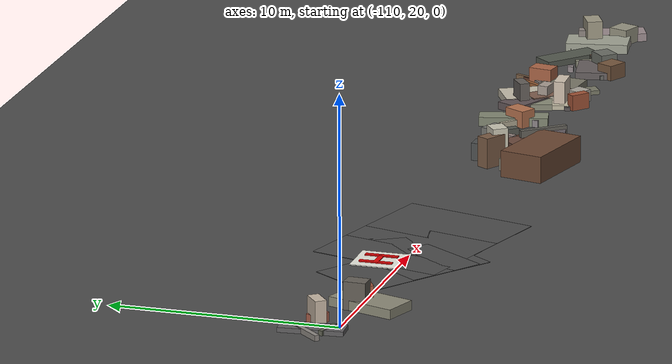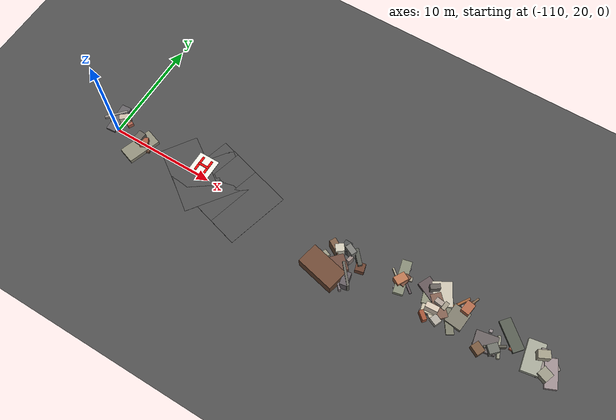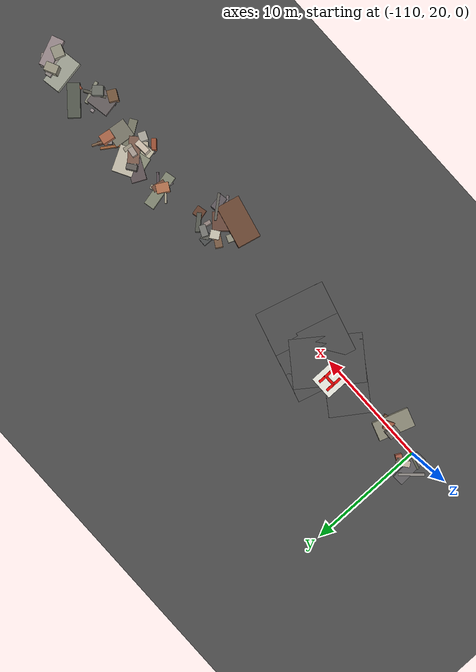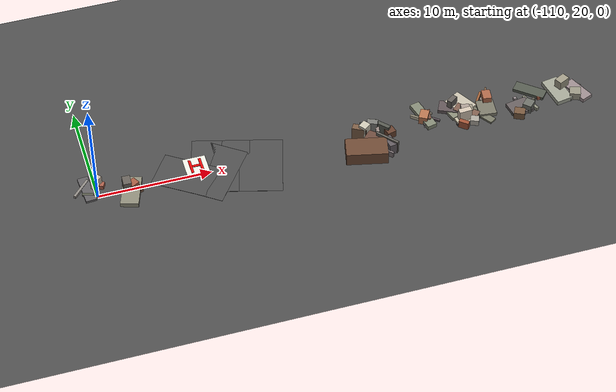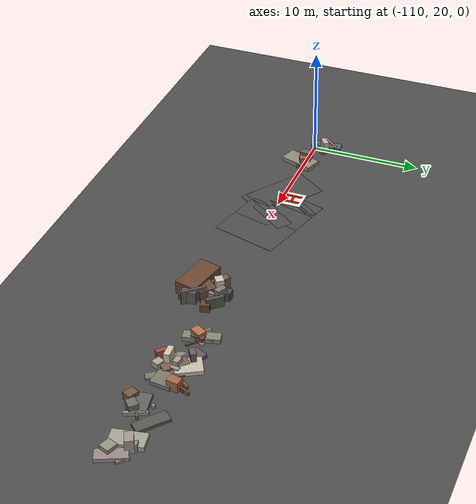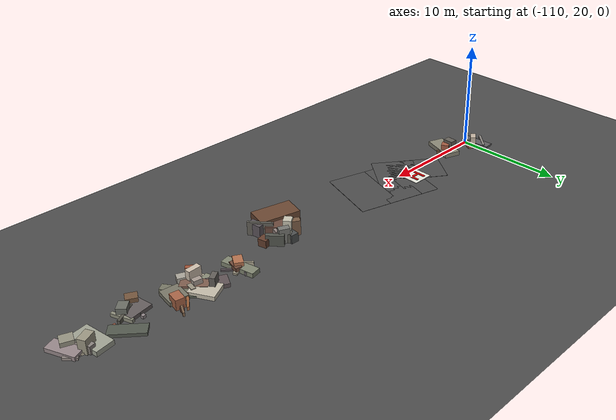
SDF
<sdf version="1.6">
 <world name="navitas_arena">
  <model name="ground_plane">
   <static>true</static>
   <link name="link">
    <collision name="collision">
     <geometry><plane><normal>0 0 1</normal><size>400 400</size></plane></geometry>
     <surface><friction><ode><mu>0.800</mu><mu2>0.800</mu2></ode></friction></surface>
    </collision>
    <visual name="visual">
     <cast_shadows>false</cast_shadows>
     <geometry><plane><normal>0 0 1</normal><size>400 400</size></plane></geometry>
     <material>
      <specular>0.04 0.04 0.04 1</specular>
      <script>
       <uri>file://media/materials/scripts/navitas_asphalt.material</uri>
       <name>Navitas/RealArenaAsphalt</name>
      </script>
     </material>
    </visual>
   </link>
  </model>
  <model name="road_kolay_1_18">
   <static>true</static>
   <pose>-101.885 19.935 0.040 0 0 0.969</pose>
   <link name="link">
    <collision name="col"><geometry><box><size>3.484 6.000 0.020</size></box></geometry></collision>
    <visual name="vis">
     <geometry><box><size>3.484 6.000 0.020</size></box></geometry>
     <material>
      <specular>0.04 0.04 0.04 1</specular>
      <script>
       <uri>file://media/materials/scripts/navitas_asphalt.material</uri>
       <name>Navitas/RealArenaAsphalt</name>
      </script>
     </material>
    </visual>
   </link>
  </model>
  <model name="road_kolay_2_18">
   <static>true</static>
   <pose>-99.883 20.070 0.040 0 0 2.510</pose>
   <link name="link">
    <collision name="col"><geometry><box><size>4.048 6.000 0.020</size></box></geometry></collision>
    <visual name="vis">
     <geometry><box><size>4.048 6.000 0.020</size></box></geometry>
     <material>
      <specular>0.04 0.04 0.04 1</specular>
      <script>
       <uri>file://media/materials/scripts/navitas_asphalt.material</uri>
       <name>Navitas/RealArenaAsphalt</name>
      </script>
     </material>
    </visual>
   </link>
  </model>
  <model name="road_kolay_3_25">
   <static>true</static>
   <pose>-95.791 19.520 0.040 0 0 2.870</pose>
   <link name="link">
    <collision name="col"><geometry><box><size>3.735 6.000 0.020</size></box></geometry></collision>
    <visual name="vis">
     <geometry><box><size>3.735 6.000 0.020</size></box></geometry>
     <material>
      <specular>0.04 0.04 0.04 1</specular>
      <script>
       <uri>file://media/materials/scripts/navitas_asphalt.material</uri>
       <name>Navitas/RealArenaAsphalt</name>
      </script>
     </material>
    </visual>
   </link>
  </model>
  <model name="road_kolay_3_26">
   <static>true</static>
   <pose>-98.326 20.220 0.040 0 0 2.874</pose>
   <link name="link">
    <collision name="col"><geometry><box><size>3.324 6.000 0.020</size></box></geometry></collision>
    <visual name="vis">
     <geometry><box><size>3.324 6.000 0.020</size></box></geometry>
     <material>
      <specular>0.04 0.04 0.04 1</specular>
      <script>
       <uri>file://media/materials/scripts/navitas_asphalt.material</uri>
       <name>Navitas/RealArenaAsphalt</name>
      </script>
     </material>
    </visual>
   </link>
  </model>
  <model name="road_kolay_3_27">
   <static>true</static>
   <pose>-100.325 20.770 0.040 0 0 2.871</pose>
   <link name="link">
    <collision name="col"><geometry><box><size>2.621 6.000 0.020</size></box></geometry></collision>
    <visual name="vis">
     <geometry><box><size>2.621 6.000 0.020</size></box></geometry>
     <material>
      <specular>0.04 0.04 0.04 1</specular>
      <script>
       <uri>file://media/materials/scripts/navitas_asphalt.material</uri>
       <name>Navitas/RealArenaAsphalt</name>
      </script>
     </material>
    </visual>
   </link>
  </model>
  <model name="blk_kolay_3_1_3">
   <static>true</static>
   <pose>-85.733 19.410 0.000 0 0 0</pose>
   <link name="link">
    <collision name="col_0">
     <pose>-1.041 -1.429 0.597 0.000 0.000 2.914</pose>
     <geometry><box><size>3.621 1.969 1.194</size></box></geometry>
    </collision>
    <visual name="vis_0">
     <pose>-1.041 -1.429 0.597 0.000 0.000 2.914</pose>
     <geometry><box><size>3.621 1.969 1.194</size></box></geometry>
     <material>
      <ambient>0.39 0.26 0.19 1</ambient>
      <diffuse>0.42 0.28 0.20 1</diffuse>
      <specular>0.05 0.05 0.045 1</specular>
     </material>
    </visual>
    <collision name="col_1">
     <pose>-0.304 1.374 0.391 0.000 0.000 1.536</pose>
     <geometry><box><size>0.913 0.696 0.783</size></box></geometry>
    </collision>
    <visual name="vis_1">
     <pose>-0.304 1.374 0.391 0.000 0.000 1.536</pose>
     <geometry><box><size>0.913 0.696 0.783</size></box></geometry>
     <material>
      <ambient>0.28 0.29 0.28 1</ambient>
      <diffuse>0.30 0.31 0.31 1</diffuse>
      <specular>0.05 0.05 0.045 1</specular>
     </material>
    </visual>
    <collision name="col_2">
     <pose>-0.984 0.748 0.685 0.000 0.000 2.615</pose>
     <geometry><box><size>1.278 0.606 1.370</size></box></geometry>
    </collision>
    <visual name="vis_2">
     <pose>-0.984 0.748 0.685 0.000 0.000 2.615</pose>
     <geometry><box><size>1.278 0.606 1.370</size></box></geometry>
     <material>
      <ambient>0.45 0.33 0.25 1</ambient>
      <diffuse>0.48 0.36 0.27 1</diffuse>
      <specular>0.05 0.05 0.045 1</specular>
     </material>
    </visual>
    <collision name="col_3">
     <pose>-1.553 -0.138 0.277 0.000 0.000 2.764</pose>
     <geometry><box><size>0.619 0.610 0.554</size></box></geometry>
    </collision>
    <visual name="vis_3">
     <pose>-1.553 -0.138 0.277 0.000 0.000 2.764</pose>
     <geometry><box><size>0.619 0.610 0.554</size></box></geometry>
     <material>
      <ambient>0.54 0.52 0.46 1</ambient>
      <diffuse>0.58 0.57 0.50 1</diffuse>
      <specular>0.05 0.05 0.045 1</specular>
     </material>
    </visual>
    <collision name="col_4">
     <pose>1.137 -1.294 0.550 0.000 0.000 3.307</pose>
     <geometry><box><size>0.654 1.247 1.100</size></box></geometry>
    </collision>
    <visual name="vis_4">
     <pose>1.137 -1.294 0.550 0.000 0.000 3.307</pose>
     <geometry><box><size>0.654 1.247 1.100</size></box></geometry>
     <material>
      <ambient>0.35 0.33 0.34 1</ambient>
      <diffuse>0.38 0.35 0.37 1</diffuse>
      <specular>0.05 0.05 0.045 1</specular>
     </material>
    </visual>
    <collision name="col_5">
     <pose>0.979 -0.968 0.631 0.000 0.000 2.273</pose>
     <geometry><box><size>2.194 0.216 1.261</size></box></geometry>
    </collision>
    <visual name="vis_5">
     <pose>0.979 -0.968 0.631 0.000 0.000 2.273</pose>
     <geometry><box><size>2.194 0.216 1.261</size></box></geometry>
     <material>
      <ambient>0.36 0.35 0.32 1</ambient>
      <diffuse>0.39 0.38 0.35 1</diffuse>
      <specular>0.05 0.05 0.045 1</specular>
     </material>
    </visual>
   </link>
  </model>
  <model name="blk_kolay_3_1_7">
   <static>true</static>
   <pose>-85.310 19.194 0.000 0 0 0</pose>
   <link name="link">
    <collision name="col_0">
     <pose>-1.000 0.884 0.814 0.000 0.000 2.206</pose>
     <geometry><box><size>0.703 0.771 1.628</size></box></geometry>
    </collision>
    <visual name="vis_0">
     <pose>-1.000 0.884 0.814 0.000 0.000 2.206</pose>
     <geometry><box><size>0.703 0.771 1.628</size></box></geometry>
     <material>
      <ambient>0.73 0.71 0.65 1</ambient>
      <diffuse>0.79 0.77 0.70 1</diffuse>
      <specular>0.05 0.05 0.045 1</specular>
     </material>
    </visual>
    <collision name="col_1">
     <pose>0.664 1.174 0.495 0.000 0.000 2.307</pose>
     <geometry><box><size>1.533 0.372 0.990</size></box></geometry>
    </collision>
    <visual name="vis_1">
     <pose>0.664 1.174 0.495 0.000 0.000 2.307</pose>
     <geometry><box><size>1.533 0.372 0.990</size></box></geometry>
     <material>
      <ambient>0.30 0.32 0.29 1</ambient>
      <diffuse>0.33 0.34 0.31 1</diffuse>
      <specular>0.05 0.05 0.045 1</specular>
     </material>
    </visual>
    <collision name="col_2">
     <pose>-0.541 1.540 0.405 0.000 0.000 0.633</pose>
     <geometry><box><size>0.652 0.429 0.811</size></box></geometry>
    </collision>
    <visual name="vis_2">
     <pose>-0.541 1.540 0.405 0.000 0.000 0.633</pose>
     <geometry><box><size>0.652 0.429 0.811</size></box></geometry>
     <material>
      <ambient>0.33 0.34 0.31 1</ambient>
      <diffuse>0.36 0.36 0.33 1</diffuse>
      <specular>0.05 0.05 0.045 1</specular>
     </material>
    </visual>
    <collision name="col_3">
     <pose>0.163 -1.387 0.278 0.000 0.000 2.283</pose>
     <geometry><box><size>1.697 0.204 0.556</size></box></geometry>
    </collision>
    <visual name="vis_3">
     <pose>0.163 -1.387 0.278 0.000 0.000 2.283</pose>
     <geometry><box><size>1.697 0.204 0.556</size></box></geometry>
     <material>
      <ambient>0.43 0.40 0.40 1</ambient>
      <diffuse>0.47 0.43 0.44 1</diffuse>
      <specular>0.05 0.05 0.045 1</specular>
     </material>
    </visual>
    <collision name="col_4">
     <pose>-0.656 -0.389 0.472 0.000 0.000 0.828</pose>
     <geometry><box><size>1.865 1.515 0.944</size></box></geometry>
    </collision>
    <visual name="vis_4">
     <pose>-0.656 -0.389 0.472 0.000 0.000 0.828</pose>
     <geometry><box><size>1.865 1.515 0.944</size></box></geometry>
     <material>
      <ambient>0.39 0.26 0.23 1</ambient>
      <diffuse>0.42 0.29 0.24 1</diffuse>
      <specular>0.05 0.05 0.045 1</specular>
     </material>
    </visual>
    <collision name="col_5">
     <pose>-0.148 1.331 0.678 0.000 0.000 1.145</pose>
     <geometry><box><size>0.554 0.931 1.355</size></box></geometry>
    </collision>
    <visual name="vis_5">
     <pose>-0.148 1.331 0.678 0.000 0.000 1.145</pose>
     <geometry><box><size>0.554 0.931 1.355</size></box></geometry>
     <material>
      <ambient>0.44 0.44 0.42 1</ambient>
      <diffuse>0.47 0.47 0.45 1</diffuse>
      <specular>0.05 0.05 0.045 1</specular>
     </material>
    </visual>
    <collision name="col_6">
     <pose>1.223 0.571 0.341 0.000 0.000 0.231</pose>
     <geometry><box><size>0.802 0.792 0.681</size></box></geometry>
    </collision>
    <visual name="vis_6">
     <pose>1.223 0.571 0.341 0.000 0.000 0.231</pose>
     <geometry><box><size>0.802 0.792 0.681</size></box></geometry>
     <material>
      <ambient>0.37 0.23 0.17 1</ambient>
      <diffuse>0.40 0.25 0.18 1</diffuse>
      <specular>0.05 0.05 0.045 1</specular>
     </material>
    </visual>
    <collision name="col_7">
     <pose>-0.882 -0.999 0.352 0.000 0.000 0.465</pose>
     <geometry><box><size>2.436 0.202 0.705</size></box></geometry>
    </collision>
    <visual name="vis_7">
     <pose>-0.882 -0.999 0.352 0.000 0.000 0.465</pose>
     <geometry><box><size>2.436 0.202 0.705</size></box></geometry>
     <material>
      <ambient>0.55 0.34 0.22 1</ambient>
      <diffuse>0.60 0.37 0.23 1</diffuse>
      <specular>0.05 0.05 0.045 1</specular>
     </material>
    </visual>
    <collision name="col_8">
     <pose>0.127 0.690 0.474 0.000 0.000 1.329</pose>
     <geometry><box><size>0.581 0.300 0.948</size></box></geometry>
    </collision>
    <visual name="vis_8">
     <pose>0.127 0.690 0.474 0.000 0.000 1.329</pose>
     <geometry><box><size>0.581 0.300 0.948</size></box></geometry>
     <material>
      <ambient>0.54 0.48 0.46 1</ambient>
      <diffuse>0.58 0.52 0.50 1</diffuse>
      <specular>0.05 0.05 0.045 1</specular>
     </material>
    </visual>
   </link>
  </model>
  <model name="deb_kolay_22">
   <static>true</static>
   <pose>-75.755 20.832 0.000 0 0 0</pose>
   <link name="link">
    <collision name="col_0">
     <pose>0.712 -0.579 0.183 0.000 0.000 1.463</pose>
     <geometry><box><size>1.741 1.551 0.367</size></box></geometry>
    </collision>
    <visual name="vis_0">
     <pose>0.712 -0.579 0.183 0.000 0.000 1.463</pose>
     <geometry><box><size>1.741 1.551 0.367</size></box></geometry>
     <material>
      <ambient>0.45 0.43 0.38 1</ambient>
      <diffuse>0.48 0.47 0.41 1</diffuse>
      <specular>0.05 0.05 0.045 1</specular>
     </material>
    </visual>
    <collision name="col_1">
     <pose>-0.232 0.345 0.064 0.000 0.000 2.379</pose>
     <geometry><box><size>1.174 0.231 0.129</size></box></geometry>
    </collision>
    <visual name="vis_1">
     <pose>-0.232 0.345 0.064 0.000 0.000 2.379</pose>
     <geometry><box><size>1.174 0.231 0.129</size></box></geometry>
     <material>
      <ambient>0.35 0.38 0.32 1</ambient>
      <diffuse>0.38 0.41 0.35 1</diffuse>
      <specular>0.05 0.05 0.045 1</specular>
     </material>
    </visual>
    <collision name="col_2">
     <pose>-0.622 -0.281 0.215 0.000 0.000 1.405</pose>
     <geometry><box><size>0.751 0.375 0.430</size></box></geometry>
    </collision>
    <visual name="vis_2">
     <pose>-0.622 -0.281 0.215 0.000 0.000 1.405</pose>
     <geometry><box><size>0.751 0.375 0.430</size></box></geometry>
     <material>
      <ambient>0.56 0.54 0.47 1</ambient>
      <diffuse>0.61 0.58 0.51 1</diffuse>
      <specular>0.05 0.05 0.045 1</specular>
     </material>
    </visual>
    <collision name="col_3">
     <pose>0.408 0.710 0.154 0.000 0.000 0.986</pose>
     <geometry><box><size>1.691 0.186 0.308</size></box></geometry>
    </collision>
    <visual name="vis_3">
     <pose>0.408 0.710 0.154 0.000 0.000 0.986</pose>
     <geometry><box><size>1.691 0.186 0.308</size></box></geometry>
     <material>
      <ambient>0.57 0.35 0.20 1</ambient>
      <diffuse>0.62 0.38 0.22 1</diffuse>
      <specular>0.05 0.05 0.045 1</specular>
     </material>
    </visual>
   </link>
  </model>
  <model name="deb_kolay_30">
   <static>true</static>
   <pose>-71.133 20.255 0.000 0 0 0</pose>
   <link name="link">
    <collision name="col_0">
     <pose>-0.168 -1.022 0.110 0.000 0.000 1.708</pose>
     <geometry><box><size>0.292 0.247 0.220</size></box></geometry>
    </collision>
    <visual name="vis_0">
     <pose>-0.168 -1.022 0.110 0.000 0.000 1.708</pose>
     <geometry><box><size>0.292 0.247 0.220</size></box></geometry>
     <material>
      <ambient>0.34 0.29 0.31 1</ambient>
      <diffuse>0.37 0.31 0.34 1</diffuse>
      <specular>0.05 0.05 0.045 1</specular>
     </material>
    </visual>
    <collision name="col_1">
     <pose>-0.210 -0.621 0.176 0.000 0.000 0.543</pose>
     <geometry><box><size>1.889 0.224 0.352</size></box></geometry>
    </collision>
    <visual name="vis_1">
     <pose>-0.210 -0.621 0.176 0.000 0.000 0.543</pose>
     <geometry><box><size>1.889 0.224 0.352</size></box></geometry>
     <material>
      <ambient>0.32 0.31 0.27 1</ambient>
      <diffuse>0.34 0.33 0.29 1</diffuse>
      <specular>0.05 0.05 0.045 1</specular>
     </material>
    </visual>
    <collision name="col_2">
     <pose>-0.541 -0.325 0.114 0.000 0.000 2.500</pose>
     <geometry><box><size>1.303 0.162 0.228</size></box></geometry>
    </collision>
    <visual name="vis_2">
     <pose>-0.541 -0.325 0.114 0.000 0.000 2.500</pose>
     <geometry><box><size>1.303 0.162 0.228</size></box></geometry>
     <material>
      <ambient>0.28 0.30 0.27 1</ambient>
      <diffuse>0.30 0.33 0.29 1</diffuse>
      <specular>0.05 0.05 0.045 1</specular>
     </material>
    </visual>
    <collision name="col_3">
     <pose>0.086 -0.488 0.153 0.000 0.000 1.943</pose>
     <geometry><box><size>1.909 0.261 0.307</size></box></geometry>
    </collision>
    <visual name="vis_3">
     <pose>0.086 -0.488 0.153 0.000 0.000 1.943</pose>
     <geometry><box><size>1.909 0.261 0.307</size></box></geometry>
     <material>
      <ambient>0.52 0.51 0.45 1</ambient>
      <diffuse>0.56 0.56 0.49 1</diffuse>
      <specular>0.05 0.05 0.045 1</specular>
     </material>
    </visual>
    <collision name="col_4">
     <pose>0.993 -0.089 0.141 0.000 0.000 3.092</pose>
     <geometry><box><size>0.285 0.196 0.283</size></box></geometry>
    </collision>
    <visual name="vis_4">
     <pose>0.993 -0.089 0.141 0.000 0.000 3.092</pose>
     <geometry><box><size>0.285 0.196 0.283</size></box></geometry>
     <material>
      <ambient>0.61 0.34 0.24 1</ambient>
      <diffuse>0.65 0.36 0.26 1</diffuse>
      <specular>0.05 0.05 0.045 1</specular>
     </material>
    </visual>
    <collision name="col_5">
     <pose>0.563 0.981 0.142 0.000 0.000 2.435</pose>
     <geometry><box><size>2.824 1.049 0.284</size></box></geometry>
    </collision>
    <visual name="vis_5">
     <pose>0.563 0.981 0.142 0.000 0.000 2.435</pose>
     <geometry><box><size>2.824 1.049 0.284</size></box></geometry>
     <material>
      <ambient>0.30 0.32 0.29 1</ambient>
      <diffuse>0.33 0.35 0.31 1</diffuse>
      <specular>0.05 0.05 0.045 1</specular>
     </material>
    </visual>
    <collision name="col_6">
     <pose>-1.042 0.423 0.132 0.000 0.000 1.753</pose>
     <geometry><box><size>0.258 0.278 0.263</size></box></geometry>
    </collision>
    <visual name="vis_6">
     <pose>-1.042 0.423 0.132 0.000 0.000 1.753</pose>
     <geometry><box><size>0.258 0.278 0.263</size></box></geometry>
     <material>
      <ambient>0.54 0.50 0.51 1</ambient>
      <diffuse>0.58 0.54 0.55 1</diffuse>
      <specular>0.05 0.05 0.045 1</specular>
     </material>
    </visual>
   </link>
  </model>
  <model name="deb_kolay_36">
   <static>true</static>
   <pose>-72.459 19.661 0.000 0 0 0</pose>
   <link name="link">
    <collision name="col_0">
     <pose>1.050 -0.360 0.403 0.000 0.000 0.784</pose>
     <geometry><box><size>0.910 0.800 0.806</size></box></geometry>
    </collision>
    <visual name="vis_0">
     <pose>1.050 -0.360 0.403 0.000 0.000 0.784</pose>
     <geometry><box><size>0.910 0.800 0.806</size></box></geometry>
     <material>
      <ambient>0.39 0.40 0.37 1</ambient>
      <diffuse>0.42 0.43 0.40 1</diffuse>
      <specular>0.05 0.05 0.045 1</specular>
     </material>
    </visual>
    <collision name="col_1">
     <pose>0.111 -0.263 0.101 0.000 0.000 0.615</pose>
     <geometry><box><size>1.676 0.279 0.202</size></box></geometry>
    </collision>
    <visual name="vis_1">
     <pose>0.111 -0.263 0.101 0.000 0.000 0.615</pose>
     <geometry><box><size>1.676 0.279 0.202</size></box></geometry>
     <material>
      <ambient>0.39 0.39 0.37 1</ambient>
      <diffuse>0.42 0.42 0.40 1</diffuse>
      <specular>0.05 0.05 0.045 1</specular>
     </material>
    </visual>
    <collision name="col_2">
     <pose>-0.023 -0.980 0.343 0.000 0.000 1.096</pose>
     <geometry><box><size>0.793 0.949 0.686</size></box></geometry>
    </collision>
    <visual name="vis_2">
     <pose>-0.023 -0.980 0.343 0.000 0.000 1.096</pose>
     <geometry><box><size>0.793 0.949 0.686</size></box></geometry>
     <material>
      <ambient>0.42 0.32 0.22 1</ambient>
      <diffuse>0.46 0.34 0.24 1</diffuse>
      <specular>0.05 0.05 0.045 1</specular>
     </material>
    </visual>
    <collision name="col_3">
     <pose>0.316 -0.129 0.158 0.000 0.000 0.176</pose>
     <geometry><box><size>1.944 1.626 0.316</size></box></geometry>
    </collision>
    <visual name="vis_3">
     <pose>0.316 -0.129 0.158 0.000 0.000 0.176</pose>
     <geometry><box><size>1.944 1.626 0.316</size></box></geometry>
     <material>
      <ambient>0.37 0.34 0.34 1</ambient>
      <diffuse>0.40 0.37 0.37 1</diffuse>
      <specular>0.05 0.05 0.045 1</specular>
     </material>
    </visual>
   </link>
  </model>
  <model name="deb_kolay_50">
   <static>true</static>
   <pose>-77.076 19.512 0.000 0 0 0</pose>
   <link name="link">
    <collision name="col_0">
     <pose>-0.151 0.174 0.609 0.000 0.000 0.054</pose>
     <geometry><box><size>1.138 0.500 1.218</size></box></geometry>
    </collision>
    <visual name="vis_0">
     <pose>-0.151 0.174 0.609 0.000 0.000 0.054</pose>
     <geometry><box><size>1.138 0.500 1.218</size></box></geometry>
     <material>
      <ambient>0.76 0.70 0.64 1</ambient>
      <diffuse>0.82 0.76 0.69 1</diffuse>
      <specular>0.05 0.05 0.045 1</specular>
     </material>
    </visual>
    <collision name="col_1">
     <pose>-0.054 0.547 0.187 0.000 0.000 1.181</pose>
     <geometry><box><size>1.303 0.143 0.374</size></box></geometry>
    </collision>
    <visual name="vis_1">
     <pose>-0.054 0.547 0.187 0.000 0.000 1.181</pose>
     <geometry><box><size>1.303 0.143 0.374</size></box></geometry>
     <material>
      <ambient>0.39 0.28 0.19 1</ambient>
      <diffuse>0.42 0.30 0.21 1</diffuse>
      <specular>0.05 0.05 0.045 1</specular>
     </material>
    </visual>
    <collision name="col_2">
     <pose>0.560 -0.445 0.274 0.000 0.000 -0.412</pose>
     <geometry><box><size>0.748 0.683 0.548</size></box></geometry>
    </collision>
    <visual name="vis_2">
     <pose>0.560 -0.445 0.274 0.000 0.000 -0.412</pose>
     <geometry><box><size>0.748 0.683 0.548</size></box></geometry>
     <material>
      <ambient>0.62 0.60 0.56 1</ambient>
      <diffuse>0.67 0.65 0.61 1</diffuse>
      <specular>0.05 0.05 0.045 1</specular>
     </material>
    </visual>
    <collision name="col_3">
     <pose>-0.515 -0.689 0.357 0.000 0.000 -0.709</pose>
     <geometry><box><size>0.888 0.399 0.715</size></box></geometry>
    </collision>
    <visual name="vis_3">
     <pose>-0.515 -0.689 0.357 0.000 0.000 -0.709</pose>
     <geometry><box><size>0.888 0.399 0.715</size></box></geometry>
     <material>
      <ambient>0.57 0.30 0.19 1</ambient>
      <diffuse>0.62 0.32 0.21 1</diffuse>
      <specular>0.05 0.05 0.045 1</specular>
     </material>
    </visual>
    <collision name="col_4">
     <pose>0.836 0.299 0.062 0.000 0.000 0.577</pose>
     <geometry><box><size>1.212 0.241 0.125</size></box></geometry>
    </collision>
    <visual name="vis_4">
     <pose>0.836 0.299 0.062 0.000 0.000 0.577</pose>
     <geometry><box><size>1.212 0.241 0.125</size></box></geometry>
     <material>
      <ambient>0.63 0.60 0.56 1</ambient>
      <diffuse>0.68 0.65 0.60 1</diffuse>
      <specular>0.05 0.05 0.045 1</specular>
     </material>
    </visual>
    <collision name="col_5">
     <pose>-0.100 -0.158 0.081 0.000 0.000 0.163</pose>
     <geometry><box><size>1.851 0.264 0.161</size></box></geometry>
    </collision>
    <visual name="vis_5">
     <pose>-0.100 -0.158 0.081 0.000 0.000 0.163</pose>
     <geometry><box><size>1.851 0.264 0.161</size></box></geometry>
     <material>
      <ambient>0.32 0.30 0.30 1</ambient>
      <diffuse>0.34 0.32 0.32 1</diffuse>
      <specular>0.05 0.05 0.045 1</specular>
     </material>
    </visual>
    <collision name="col_6">
     <pose>-0.310 0.846 0.108 0.000 0.000 -0.155</pose>
     <geometry><box><size>1.960 0.261 0.216</size></box></geometry>
    </collision>
    <visual name="vis_6">
     <pose>-0.310 0.846 0.108 0.000 0.000 -0.155</pose>
     <geometry><box><size>1.960 0.261 0.216</size></box></geometry>
     <material>
      <ambient>0.64 0.41 0.29 1</ambient>
      <diffuse>0.69 0.44 0.32 1</diffuse>
      <specular>0.05 0.05 0.045 1</specular>
     </material>
    </visual>
   </link>
  </model>
  <model name="deb_kolay_54">
   <static>true</static>
   <pose>-68.141 20.818 0.000 0 0 0</pose>
   <link name="link">
    <collision name="col_0">
     <pose>-0.141 -0.362 0.208 0.000 0.000 1.740</pose>
     <geometry><box><size>2.834 1.518 0.415</size></box></geometry>
    </collision>
    <visual name="vis_0">
     <pose>-0.141 -0.362 0.208 0.000 0.000 1.740</pose>
     <geometry><box><size>2.834 1.518 0.415</size></box></geometry>
     <material>
      <ambient>0.58 0.59 0.53 1</ambient>
      <diffuse>0.63 0.64 0.58 1</diffuse>
      <specular>0.05 0.05 0.045 1</specular>
     </material>
    </visual>
    <collision name="col_1">
     <pose>0.050 0.469 0.083 0.000 0.000 2.899</pose>
     <geometry><box><size>2.316 0.179 0.166</size></box></geometry>
    </collision>
    <visual name="vis_1">
     <pose>0.050 0.469 0.083 0.000 0.000 2.899</pose>
     <geometry><box><size>2.316 0.179 0.166</size></box></geometry>
     <material>
      <ambient>0.71 0.68 0.59 1</ambient>
      <diffuse>0.77 0.73 0.64 1</diffuse>
      <specular>0.05 0.05 0.045 1</specular>
     </material>
    </visual>
    <collision name="col_2">
     <pose>0.405 0.034 0.616 0.000 0.000 3.596</pose>
     <geometry><box><size>1.063 0.710 1.232</size></box></geometry>
    </collision>
    <visual name="vis_2">
     <pose>0.405 0.034 0.616 0.000 0.000 3.596</pose>
     <geometry><box><size>1.063 0.710 1.232</size></box></geometry>
     <material>
      <ambient>0.57 0.56 0.48 1</ambient>
      <diffuse>0.62 0.60 0.52 1</diffuse>
      <specular>0.05 0.05 0.045 1</specular>
     </material>
    </visual>
    <collision name="col_3">
     <pose>0.149 -0.462 0.073 0.000 0.000 3.156</pose>
     <geometry><box><size>0.484 0.384 0.146</size></box></geometry>
    </collision>
    <visual name="vis_3">
     <pose>0.149 -0.462 0.073 0.000 0.000 3.156</pose>
     <geometry><box><size>0.484 0.384 0.146</size></box></geometry>
     <material>
      <ambient>0.75 0.70 0.59 1</ambient>
      <diffuse>0.80 0.75 0.64 1</diffuse>
      <specular>0.05 0.05 0.045 1</specular>
     </material>
    </visual>
    <collision name="col_4">
     <pose>0.393 0.376 0.352 0.000 0.000 3.388</pose>
     <geometry><box><size>0.511 0.608 0.703</size></box></geometry>
    </collision>
    <visual name="vis_4">
     <pose>0.393 0.376 0.352 0.000 0.000 3.388</pose>
     <geometry><box><size>0.511 0.608 0.703</size></box></geometry>
     <material>
      <ambient>0.51 0.48 0.46 1</ambient>
      <diffuse>0.55 0.52 0.50 1</diffuse>
      <specular>0.05 0.05 0.045 1</specular>
     </material>
    </visual>
   </link>
  </model>
  <model name="deb_kolay_72">
   <static>true</static>
   <pose>-77.243 21.021 0.000 0 0 0</pose>
   <link name="link">
    <collision name="col_0">
     <pose>0.202 0.345 0.185 0.000 0.000 2.070</pose>
     <geometry><box><size>2.228 1.698 0.371</size></box></geometry>
    </collision>
    <visual name="vis_0">
     <pose>0.202 0.345 0.185 0.000 0.000 2.070</pose>
     <geometry><box><size>2.228 1.698 0.371</size></box></geometry>
     <material>
      <ambient>0.71 0.68 0.62 1</ambient>
      <diffuse>0.77 0.74 0.67 1</diffuse>
      <specular>0.05 0.05 0.045 1</specular>
     </material>
    </visual>
    <collision name="col_1">
     <pose>-0.288 -0.428 0.142 0.000 0.000 3.419</pose>
     <geometry><box><size>1.817 1.063 0.283</size></box></geometry>
    </collision>
    <visual name="vis_1">
     <pose>-0.288 -0.428 0.142 0.000 0.000 3.419</pose>
     <geometry><box><size>1.817 1.063 0.283</size></box></geometry>
     <material>
      <ambient>0.50 0.51 0.43 1</ambient>
      <diffuse>0.54 0.55 0.47 1</diffuse>
      <specular>0.05 0.05 0.045 1</specular>
     </material>
    </visual>
    <collision name="col_2">
     <pose>-0.474 0.045 0.171 0.000 0.000 2.692</pose>
     <geometry><box><size>2.767 1.233 0.342</size></box></geometry>
    </collision>
    <visual name="vis_2">
     <pose>-0.474 0.045 0.171 0.000 0.000 2.692</pose>
     <geometry><box><size>2.767 1.233 0.342</size></box></geometry>
     <material>
      <ambient>0.35 0.31 0.32 1</ambient>
      <diffuse>0.38 0.33 0.34 1</diffuse>
      <specular>0.05 0.05 0.045 1</specular>
     </material>
    </visual>
    <collision name="col_3">
     <pose>-0.596 0.361 0.563 0.000 0.000 3.760</pose>
     <geometry><box><size>0.872 0.462 1.126</size></box></geometry>
    </collision>
    <visual name="vis_3">
     <pose>-0.596 0.361 0.563 0.000 0.000 3.760</pose>
     <geometry><box><size>0.872 0.462 1.126</size></box></geometry>
     <material>
      <ambient>0.36 0.34 0.32 1</ambient>
      <diffuse>0.39 0.37 0.35 1</diffuse>
      <specular>0.05 0.05 0.045 1</specular>
     </material>
    </visual>
   </link>
  </model>
  <model name="deb_kolay_82">
   <static>true</static>
   <pose>-107.035 19.664 0.000 0 0 0</pose>
   <link name="link">
    <collision name="col_0">
     <pose>0.300 0.316 0.070 0.000 0.000 0.201</pose>
     <geometry><box><size>0.489 0.170 0.140</size></box></geometry>
    </collision>
    <visual name="vis_0">
     <pose>0.300 0.316 0.070 0.000 0.000 0.201</pose>
     <geometry><box><size>0.489 0.170 0.140</size></box></geometry>
     <material>
      <ambient>0.57 0.32 0.22 1</ambient>
      <diffuse>0.61 0.34 0.24 1</diffuse>
      <specular>0.05 0.05 0.045 1</specular>
     </material>
    </visual>
    <collision name="col_1">
     <pose>-0.364 0.399 0.617 0.000 0.000 1.533</pose>
     <geometry><box><size>0.957 0.700 1.235</size></box></geometry>
    </collision>
    <visual name="vis_1">
     <pose>-0.364 0.399 0.617 0.000 0.000 1.533</pose>
     <geometry><box><size>0.957 0.700 1.235</size></box></geometry>
     <material>
      <ambient>0.37 0.35 0.32 1</ambient>
      <diffuse>0.40 0.38 0.35 1</diffuse>
      <specular>0.05 0.05 0.045 1</specular>
     </material>
    </visual>
    <collision name="col_2">
     <pose>0.666 0.004 0.149 0.000 0.000 1.894</pose>
     <geometry><box><size>0.480 0.375 0.298</size></box></geometry>
    </collision>
    <visual name="vis_2">
     <pose>0.666 0.004 0.149 0.000 0.000 1.894</pose>
     <geometry><box><size>0.480 0.375 0.298</size></box></geometry>
     <material>
      <ambient>0.42 0.29 0.22 1</ambient>
      <diffuse>0.45 0.32 0.24 1</diffuse>
      <specular>0.05 0.05 0.045 1</specular>
     </material>
    </visual>
    <collision name="col_3">
     <pose>0.148 0.278 0.467 0.000 0.000 2.077</pose>
     <geometry><box><size>0.716 0.770 0.934</size></box></geometry>
    </collision>
    <visual name="vis_3">
     <pose>0.148 0.278 0.467 0.000 0.000 2.077</pose>
     <geometry><box><size>0.716 0.770 0.934</size></box></geometry>
     <material>
      <ambient>0.60 0.34 0.24 1</ambient>
      <diffuse>0.64 0.36 0.26 1</diffuse>
      <specular>0.05 0.05 0.045 1</specular>
     </material>
    </visual>
    <collision name="col_4">
     <pose>-0.136 -0.105 0.210 0.000 0.000 1.248</pose>
     <geometry><box><size>3.095 1.559 0.419</size></box></geometry>
    </collision>
    <visual name="vis_4">
     <pose>-0.136 -0.105 0.210 0.000 0.000 1.248</pose>
     <geometry><box><size>3.095 1.559 0.419</size></box></geometry>
     <material>
      <ambient>0.51 0.50 0.44 1</ambient>
      <diffuse>0.55 0.54 0.47 1</diffuse>
      <specular>0.05 0.05 0.045 1</specular>
     </material>
    </visual>
   </link>
  </model>
  <model name="deb_kolay_111">
   <static>true</static>
   <pose>-76.741 20.249 0.000 0 0 0</pose>
   <link name="link">
    <collision name="col_0">
     <pose>0.130 0.025 0.081 0.000 0.000 -0.783</pose>
     <geometry><box><size>1.311 0.209 0.162</size></box></geometry>
    </collision>
    <visual name="vis_0">
     <pose>0.130 0.025 0.081 0.000 0.000 -0.783</pose>
     <geometry><box><size>1.311 0.209 0.162</size></box></geometry>
     <material>
      <ambient>0.60 0.57 0.55 1</ambient>
      <diffuse>0.65 0.62 0.59 1</diffuse>
      <specular>0.05 0.05 0.045 1</specular>
     </material>
    </visual>
    <collision name="col_1">
     <pose>-0.534 -0.170 0.102 0.000 0.000 0.198</pose>
     <geometry><box><size>1.754 1.506 0.205</size></box></geometry>
    </collision>
    <visual name="vis_1">
     <pose>-0.534 -0.170 0.102 0.000 0.000 0.198</pose>
     <geometry><box><size>1.754 1.506 0.205</size></box></geometry>
     <material>
      <ambient>0.71 0.68 0.60 1</ambient>
      <diffuse>0.76 0.73 0.64 1</diffuse>
      <specular>0.05 0.05 0.045 1</specular>
     </material>
    </visual>
    <collision name="col_2">
     <pose>0.147 0.356 0.109 0.000 0.000 1.346</pose>
     <geometry><box><size>0.412 0.230 0.218</size></box></geometry>
    </collision>
    <visual name="vis_2">
     <pose>0.147 0.356 0.109 0.000 0.000 1.346</pose>
     <geometry><box><size>0.412 0.230 0.218</size></box></geometry>
     <material>
      <ambient>0.54 0.48 0.50 1</ambient>
      <diffuse>0.58 0.52 0.54 1</diffuse>
      <specular>0.05 0.05 0.045 1</specular>
     </material>
    </visual>
    <collision name="col_3">
     <pose>-0.085 0.063 0.195 0.000 0.000 -0.808</pose>
     <geometry><box><size>2.205 0.957 0.389</size></box></geometry>
    </collision>
    <visual name="vis_3">
     <pose>-0.085 0.063 0.195 0.000 0.000 -0.808</pose>
     <geometry><box><size>2.205 0.957 0.389</size></box></geometry>
     <material>
      <ambient>0.47 0.34 0.29 1</ambient>
      <diffuse>0.50 0.37 0.31 1</diffuse>
      <specular>0.05 0.05 0.045 1</specular>
     </material>
    </visual>
    <collision name="col_4">
     <pose>-0.193 0.255 0.404 0.000 0.000 -0.142</pose>
     <geometry><box><size>0.743 0.465 0.808</size></box></geometry>
    </collision>
    <visual name="vis_4">
     <pose>-0.193 0.255 0.404 0.000 0.000 -0.142</pose>
     <geometry><box><size>0.743 0.465 0.808</size></box></geometry>
     <material>
      <ambient>0.61 0.57 0.52 1</ambient>
      <diffuse>0.66 0.61 0.57 1</diffuse>
      <specular>0.05 0.05 0.045 1</specular>
     </material>
    </visual>
    <collision name="col_5">
     <pose>-0.072 -0.327 0.089 0.000 0.000 0.835</pose>
     <geometry><box><size>1.696 0.845 0.177</size></box></geometry>
    </collision>
    <visual name="vis_5">
     <pose>-0.072 -0.327 0.089 0.000 0.000 0.835</pose>
     <geometry><box><size>1.696 0.845 0.177</size></box></geometry>
     <material>
      <ambient>0.70 0.66 0.59 1</ambient>
      <diffuse>0.75 0.71 0.63 1</diffuse>
      <specular>0.05 0.05 0.045 1</specular>
     </material>
    </visual>
   </link>
  </model>
  <model name="deb_kolay_120">
   <static>true</static>
   <pose>-110.364 20.768 0.000 0 0 0</pose>
   <link name="link">
    <collision name="col_0">
     <pose>-0.342 0.190 0.104 0.000 0.000 1.645</pose>
     <geometry><box><size>2.776 0.934 0.209</size></box></geometry>
    </collision>
    <visual name="vis_0">
     <pose>-0.342 0.190 0.104 0.000 0.000 1.645</pose>
     <geometry><box><size>2.776 0.934 0.209</size></box></geometry>
     <material>
      <ambient>0.35 0.34 0.35 1</ambient>
      <diffuse>0.38 0.37 0.38 1</diffuse>
      <specular>0.05 0.05 0.045 1</specular>
     </material>
    </visual>
    <collision name="col_1">
     <pose>0.507 0.261 0.579 0.000 0.000 0.660</pose>
     <geometry><box><size>0.928 0.502 1.158</size></box></geometry>
    </collision>
    <visual name="vis_1">
     <pose>0.507 0.261 0.579 0.000 0.000 0.660</pose>
     <geometry><box><size>0.928 0.502 1.158</size></box></geometry>
     <material>
      <ambient>0.71 0.66 0.59 1</ambient>
      <diffuse>0.77 0.71 0.64 1</diffuse>
      <specular>0.05 0.05 0.045 1</specular>
     </material>
    </visual>
    <collision name="col_2">
     <pose>-0.396 0.716 0.092 0.000 0.000 0.629</pose>
     <geometry><box><size>0.447 0.182 0.183</size></box></geometry>
    </collision>
    <visual name="vis_2">
     <pose>-0.396 0.716 0.092 0.000 0.000 0.629</pose>
     <geometry><box><size>0.447 0.182 0.183</size></box></geometry>
     <material>
      <ambient>0.30 0.26 0.28 1</ambient>
      <diffuse>0.33 0.28 0.30 1</diffuse>
      <specular>0.05 0.05 0.045 1</specular>
     </material>
    </visual>
    <collision name="col_3">
     <pose>-0.292 -0.440 0.107 0.000 0.000 -0.266</pose>
     <geometry><box><size>1.131 0.198 0.213</size></box></geometry>
    </collision>
    <visual name="vis_3">
     <pose>-0.292 -0.440 0.107 0.000 0.000 -0.266</pose>
     <geometry><box><size>1.131 0.198 0.213</size></box></geometry>
     <material>
      <ambient>0.33 0.35 0.29 1</ambient>
      <diffuse>0.36 0.37 0.31 1</diffuse>
      <specular>0.05 0.05 0.045 1</specular>
     </material>
    </visual>
    <collision name="col_4">
     <pose>-0.799 0.406 0.124 0.000 0.000 0.823</pose>
     <geometry><box><size>2.123 0.223 0.248</size></box></geometry>
    </collision>
    <visual name="vis_4">
     <pose>-0.799 0.406 0.124 0.000 0.000 0.823</pose>
     <geometry><box><size>2.123 0.223 0.248</size></box></geometry>
     <material>
      <ambient>0.51 0.49 0.47 1</ambient>
      <diffuse>0.55 0.53 0.51 1</diffuse>
      <specular>0.05 0.05 0.045 1</specular>
     </material>
    </visual>
    <collision name="col_5">
     <pose>0.778 0.309 0.207 0.000 0.000 1.093</pose>
     <geometry><box><size>0.530 0.824 0.414</size></box></geometry>
    </collision>
    <visual name="vis_5">
     <pose>0.778 0.309 0.207 0.000 0.000 1.093</pose>
     <geometry><box><size>0.530 0.824 0.414</size></box></geometry>
     <material>
      <ambient>0.61 0.34 0.27 1</ambient>
      <diffuse>0.66 0.37 0.29 1</diffuse>
      <specular>0.05 0.05 0.045 1</specular>
     </material>
    </visual>
   </link>
  </model>
  <model name="deb_kolay_139">
   <static>true</static>
   <pose>-74.898 20.590 0.000 0 0 0</pose>
   <link name="link">
    <collision name="col_0">
     <pose>-0.120 0.705 0.175 0.000 0.000 2.384</pose>
     <geometry><box><size>0.415 0.359 0.350</size></box></geometry>
    </collision>
    <visual name="vis_0">
     <pose>-0.120 0.705 0.175 0.000 0.000 2.384</pose>
     <geometry><box><size>0.415 0.359 0.350</size></box></geometry>
     <material>
      <ambient>0.53 0.48 0.46 1</ambient>
      <diffuse>0.57 0.52 0.50 1</diffuse>
      <specular>0.05 0.05 0.045 1</specular>
     </material>
    </visual>
    <collision name="col_1">
     <pose>-0.700 -0.892 0.092 0.000 0.000 2.153</pose>
     <geometry><box><size>2.477 0.675 0.184</size></box></geometry>
    </collision>
    <visual name="vis_1">
     <pose>-0.700 -0.892 0.092 0.000 0.000 2.153</pose>
     <geometry><box><size>2.477 0.675 0.184</size></box></geometry>
     <material>
      <ambient>0.43 0.43 0.37 1</ambient>
      <diffuse>0.47 0.47 0.40 1</diffuse>
      <specular>0.05 0.05 0.045 1</specular>
     </material>
    </visual>
    <collision name="col_2">
     <pose>-0.658 0.540 0.128 0.000 0.000 1.091</pose>
     <geometry><box><size>0.284 0.334 0.255</size></box></geometry>
    </collision>
    <visual name="vis_2">
     <pose>-0.658 0.540 0.128 0.000 0.000 1.091</pose>
     <geometry><box><size>0.284 0.334 0.255</size></box></geometry>
     <material>
      <ambient>0.65 0.38 0.27 1</ambient>
      <diffuse>0.70 0.41 0.29 1</diffuse>
      <specular>0.05 0.05 0.045 1</specular>
     </material>
    </visual>
    <collision name="col_3">
     <pose>-0.039 0.604 0.156 0.000 0.000 1.104</pose>
     <geometry><box><size>2.139 0.292 0.311</size></box></geometry>
    </collision>
    <visual name="vis_3">
     <pose>-0.039 0.604 0.156 0.000 0.000 1.104</pose>
     <geometry><box><size>2.139 0.292 0.311</size></box></geometry>
     <material>
      <ambient>0.41 0.26 0.21 1</ambient>
      <diffuse>0.44 0.28 0.22 1</diffuse>
      <specular>0.05 0.05 0.045 1</specular>
     </material>
    </visual>
    <collision name="col_4">
     <pose>0.218 0.663 0.452 0.000 0.000 1.414</pose>
     <geometry><box><size>1.050 0.768 0.903</size></box></geometry>
    </collision>
    <visual name="vis_4">
     <pose>0.218 0.663 0.452 0.000 0.000 1.414</pose>
     <geometry><box><size>1.050 0.768 0.903</size></box></geometry>
     <material>
      <ambient>0.62 0.37 0.26 1</ambient>
      <diffuse>0.67 0.40 0.28 1</diffuse>
      <specular>0.05 0.05 0.045 1</specular>
     </material>
    </visual>
    <collision name="col_5">
     <pose>0.255 1.152 0.167 0.000 0.000 1.151</pose>
     <geometry><box><size>1.874 0.157 0.333</size></box></geometry>
    </collision>
    <visual name="vis_5">
     <pose>0.255 1.152 0.167 0.000 0.000 1.151</pose>
     <geometry><box><size>1.874 0.157 0.333</size></box></geometry>
     <material>
      <ambient>0.47 0.36 0.27 1</ambient>
      <diffuse>0.50 0.39 0.29 1</diffuse>
      <specular>0.05 0.05 0.045 1</specular>
     </material>
    </visual>
   </link>
  </model>
  <model name="deb_kolay_155">
   <static>true</static>
   <pose>-67.318 19.961 0.000 0 0 0</pose>
   <link name="link">
    <collision name="col_0">
     <pose>0.224 0.296 0.104 0.000 0.000 0.791</pose>
     <geometry><box><size>2.151 1.086 0.209</size></box></geometry>
    </collision>
    <visual name="vis_0">
     <pose>0.224 0.296 0.104 0.000 0.000 0.791</pose>
     <geometry><box><size>2.151 1.086 0.209</size></box></geometry>
     <material>
      <ambient>0.54 0.51 0.49 1</ambient>
      <diffuse>0.59 0.55 0.53 1</diffuse>
      <specular>0.05 0.05 0.045 1</specular>
     </material>
    </visual>
    <collision name="col_1">
     <pose>0.172 -0.460 0.119 0.000 0.000 0.248</pose>
     <geometry><box><size>1.148 0.159 0.238</size></box></geometry>
    </collision>
    <visual name="vis_1">
     <pose>0.172 -0.460 0.119 0.000 0.000 0.248</pose>
     <geometry><box><size>1.148 0.159 0.238</size></box></geometry>
     <material>
      <ambient>0.44 0.33 0.25 1</ambient>
      <diffuse>0.47 0.36 0.27 1</diffuse>
      <specular>0.05 0.05 0.045 1</specular>
     </material>
    </visual>
    <collision name="col_2">
     <pose>0.793 0.033 0.181 0.000 0.000 1.974</pose>
     <geometry><box><size>2.521 1.071 0.362</size></box></geometry>
    </collision>
    <visual name="vis_2">
     <pose>0.793 0.033 0.181 0.000 0.000 1.974</pose>
     <geometry><box><size>2.521 1.071 0.362</size></box></geometry>
     <material>
      <ambient>0.55 0.50 0.51 1</ambient>
      <diffuse>0.60 0.54 0.55 1</diffuse>
      <specular>0.05 0.05 0.045 1</specular>
     </material>
    </visual>
    <collision name="col_3">
     <pose>-0.309 0.538 0.173 0.000 0.000 0.204</pose>
     <geometry><box><size>0.189 0.185 0.346</size></box></geometry>
    </collision>
    <visual name="vis_3">
     <pose>-0.309 0.538 0.173 0.000 0.000 0.204</pose>
     <geometry><box><size>0.189 0.185 0.346</size></box></geometry>
     <material>
      <ambient>0.55 0.34 0.23 1</ambient>
      <diffuse>0.59 0.36 0.25 1</diffuse>
      <specular>0.05 0.05 0.045 1</specular>
     </material>
    </visual>
    <collision name="col_4">
     <pose>0.388 -0.369 0.362 0.000 0.000 1.213</pose>
     <geometry><box><size>0.913 0.975 0.724</size></box></geometry>
    </collision>
    <visual name="vis_4">
     <pose>0.388 -0.369 0.362 0.000 0.000 1.213</pose>
     <geometry><box><size>0.913 0.975 0.724</size></box></geometry>
     <material>
      <ambient>0.54 0.54 0.47 1</ambient>
      <diffuse>0.59 0.58 0.51 1</diffuse>
      <specular>0.05 0.05 0.045 1</specular>
     </material>
    </visual>
   </link>
  </model>
  <model name="deb_kolay_189">
   <static>true</static>
   <pose>-80.456 20.920 0.000 0 0 0</pose>
   <link name="link">
    <collision name="col_0">
     <pose>-0.212 -0.275 0.388 0.000 0.000 1.053</pose>
     <geometry><box><size>1.063 0.772 0.775</size></box></geometry>
    </collision>
    <visual name="vis_0">
     <pose>-0.212 -0.275 0.388 0.000 0.000 1.053</pose>
     <geometry><box><size>1.063 0.772 0.775</size></box></geometry>
     <material>
      <ambient>0.66 0.41 0.29 1</ambient>
      <diffuse>0.71 0.45 0.31 1</diffuse>
      <specular>0.05 0.05 0.045 1</specular>
     </material>
    </visual>
    <collision name="col_1">
     <pose>-0.430 -0.337 0.167 0.000 0.000 2.440</pose>
     <geometry><box><size>2.138 0.150 0.334</size></box></geometry>
    </collision>
    <visual name="vis_1">
     <pose>-0.430 -0.337 0.167 0.000 0.000 2.440</pose>
     <geometry><box><size>2.138 0.150 0.334</size></box></geometry>
     <material>
      <ambient>0.64 0.61 0.53 1</ambient>
      <diffuse>0.69 0.66 0.57 1</diffuse>
      <specular>0.05 0.05 0.045 1</specular>
     </material>
    </visual>
    <collision name="col_2">
     <pose>-0.165 -0.049 0.160 0.000 0.000 1.408</pose>
     <geometry><box><size>2.271 0.229 0.320</size></box></geometry>
    </collision>
    <visual name="vis_2">
     <pose>-0.165 -0.049 0.160 0.000 0.000 1.408</pose>
     <geometry><box><size>2.271 0.229 0.320</size></box></geometry>
     <material>
      <ambient>0.52 0.49 0.50 1</ambient>
      <diffuse>0.56 0.53 0.54 1</diffuse>
      <specular>0.05 0.05 0.045 1</specular>
     </material>
    </visual>
    <collision name="col_3">
     <pose>0.132 -0.155 0.260 0.000 0.000 1.400</pose>
     <geometry><box><size>1.120 0.535 0.519</size></box></geometry>
    </collision>
    <visual name="vis_3">
     <pose>0.132 -0.155 0.260 0.000 0.000 1.400</pose>
     <geometry><box><size>1.120 0.535 0.519</size></box></geometry>
     <material>
      <ambient>0.42 0.28 0.21 1</ambient>
      <diffuse>0.45 0.30 0.23 1</diffuse>
      <specular>0.05 0.05 0.045 1</specular>
     </material>
    </visual>
    <collision name="col_4">
     <pose>0.453 0.280 0.085 0.000 0.000 1.914</pose>
     <geometry><box><size>0.393 0.376 0.171</size></box></geometry>
    </collision>
    <visual name="vis_4">
     <pose>0.453 0.280 0.085 0.000 0.000 1.914</pose>
     <geometry><box><size>0.393 0.376 0.171</size></box></geometry>
     <material>
      <ambient>0.56 0.54 0.47 1</ambient>
      <diffuse>0.61 0.58 0.51 1</diffuse>
      <specular>0.05 0.05 0.045 1</specular>
     </material>
    </visual>
    <collision name="col_5">
     <pose>0.242 -0.144 0.081 0.000 0.000 2.453</pose>
     <geometry><box><size>2.149 0.194 0.162</size></box></geometry>
    </collision>
    <visual name="vis_5">
     <pose>0.242 -0.144 0.081 0.000 0.000 2.453</pose>
     <geometry><box><size>2.149 0.194 0.162</size></box></geometry>
     <material>
      <ambient>0.33 0.29 0.31 1</ambient>
      <diffuse>0.35 0.31 0.33 1</diffuse>
      <specular>0.05 0.05 0.045 1</specular>
     </material>
    </visual>
    <collision name="col_6">
     <pose>-0.170 0.031 0.200 0.000 0.000 1.797</pose>
     <geometry><box><size>3.071 0.889 0.401</size></box></geometry>
    </collision>
    <visual name="vis_6">
     <pose>-0.170 0.031 0.200 0.000 0.000 1.797</pose>
     <geometry><box><size>3.071 0.889 0.401</size></box></geometry>
     <material>
      <ambient>0.47 0.49 0.42 1</ambient>
      <diffuse>0.51 0.53 0.45 1</diffuse>
      <specular>0.05 0.05 0.045 1</specular>
     </material>
    </visual>
   </link>
  </model>
  <model name="hbpad_kolay">
   <static>true</static>
   <pose>-101.153 21.000 0.070 0 0 0.000</pose>
   <link name="link">
    <collision name="col"><geometry><box><size>2.000 2.000 0.040</size></box></geometry></collision>
    <visual name="vis">
     <geometry><box><size>2.000 2.000 0.040</size></box></geometry>
     <material>
      <ambient>0.92 0.92 0.88 1</ambient>
      <diffuse>0.92 0.92 0.88 1</diffuse>
      <specular>0.04 0.04 0.04 1</specular>
     </material>
    </visual>
   </link>
  </model>
  <model name="H_kolay_l">
   <static>true</static>
   <pose>-101.603 21.000 0.100 0 0 0.000</pose>
   <link name="link">
    <collision name="col"><geometry><box><size>0.220 1.450 0.080</size></box></geometry></collision>
    <visual name="vis">
     <geometry><box><size>0.220 1.450 0.080</size></box></geometry>
     <material>
      <ambient>0.90 0.02 0.02 1</ambient>
      <diffuse>0.90 0.02 0.02 1</diffuse>
      <specular>0.04 0.04 0.04 1</specular>
     </material>
    </visual>
   </link>
  </model>
  <model name="H_kolay_r">
   <static>true</static>
   <pose>-100.703 21.000 0.100 0 0 0.000</pose>
   <link name="link">
    <collision name="col"><geometry><box><size>0.220 1.450 0.080</size></box></geometry></collision>
    <visual name="vis">
     <geometry><box><size>0.220 1.450 0.080</size></box></geometry>
     <material>
      <ambient>0.90 0.02 0.02 1</ambient>
      <diffuse>0.90 0.02 0.02 1</diffuse>
      <specular>0.04 0.04 0.04 1</specular>
     </material>
    </visual>
   </link>
  </model>
  <model name="H_kolay_b">
   <static>true</static>
   <pose>-101.153 21.000 0.100 0 0 0.000</pose>
   <link name="link">
    <collision name="col"><geometry><box><size>1.100 0.220 0.080</size></box></geometry></collision>
    <visual name="vis">
     <geometry><box><size>1.100 0.220 0.080</size></box></geometry>
     <material>
      <ambient>0.90 0.02 0.02 1</ambient>
      <diffuse>0.90 0.02 0.02 1</diffuse>
      <specular>0.04 0.04 0.04 1</specular>
     </material>
    </visual>
   </link>
  </model>
 </world>
</sdf>
